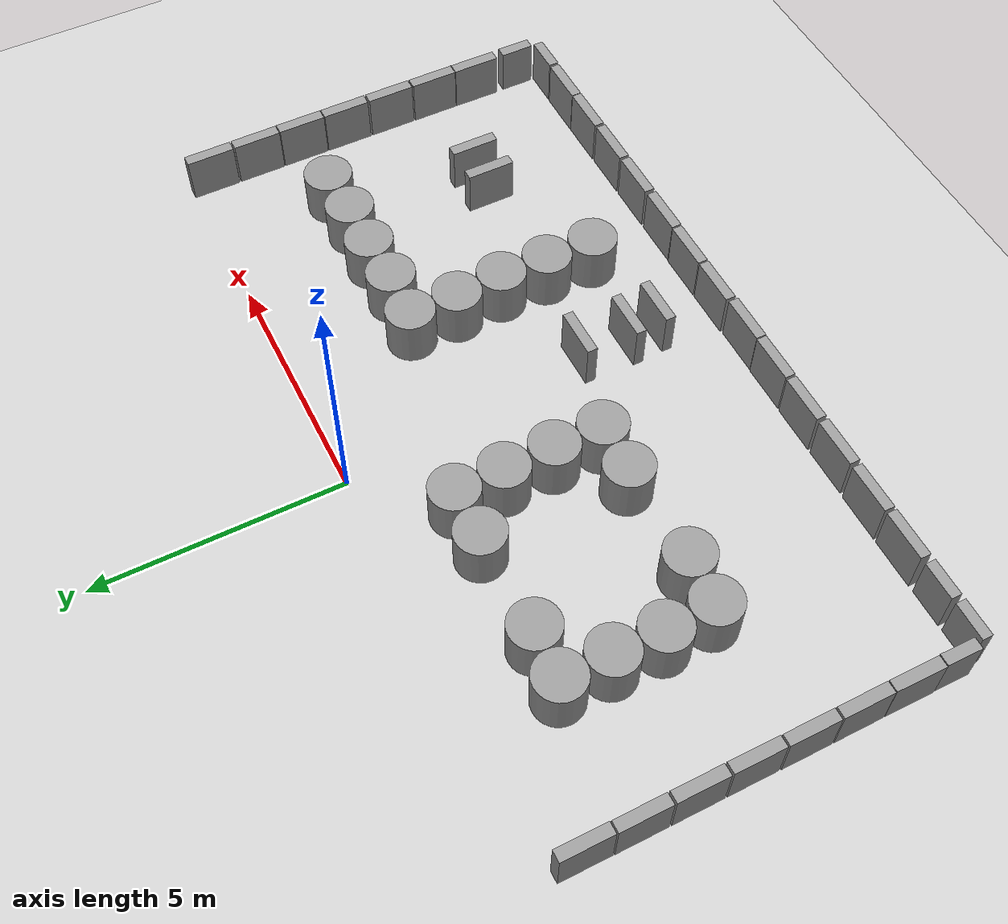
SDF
<sdf version="1.6">
 <world name="default">
  <model name="ground_plane">
   <static>1</static>
   <static>1</static>
   <link name="link">
    <collision name="collision">
     <geometry><plane><normal>0 0 1</normal><size>100 100</size></plane></geometry>
     <surface><friction><ode><mu>100</mu><mu2>50</mu2></ode></friction></surface>
    </collision>
    <visual name="visual">
     <cast_shadows>0</cast_shadows>
     <geometry><plane><normal>0 0 1</normal><size>100 100</size></plane></geometry>
     <material>
      <script><uri>file://media/materials/scripts/gazebo.material</uri><name>Gazebo/Grey</name></script>
     </material>
    </visual>
   </link>
  </model>
  <model name="unit_box_0_clone_7">
   <pose>8.11276 -0.44932 0.5 0 -0 0.000213</pose>
   <link name="link">
    <inertial>
     <mass>1</mass>
     <inertia>
      <ixx>0.166667</ixx>
      <ixy>0</ixy>
      <ixz>0</ixz>
      <iyy>0.166667</iyy>
      <iyz>0</iyz>
      <izz>0.166667</izz>
     </inertia>
    </inertial>
    <collision name="collision"><geometry><box><size>0.230819 1 1</size></box></geometry></collision>
    <visual name="visual">
     <geometry><box><size>0.230819 1 1</size></box></geometry>
     <material>
      <script><name>Gazebo/Grey</name><uri>file://media/materials/scripts/gazebo.material</uri></script>
     </material>
    </visual>
   </link>
  </model>
  <model name="unit_box_0_clone_8">
   <pose>8.11912 -1.48629 0.5 0 -0 0.000213</pose>
   <link name="link">
    <inertial>
     <mass>1</mass>
     <inertia>
      <ixx>0.166667</ixx>
      <ixy>0</ixy>
      <ixz>0</ixz>
      <iyy>0.166667</iyy>
      <iyz>0</iyz>
      <izz>0.166667</izz>
     </inertia>
    </inertial>
    <collision name="collision"><geometry><box><size>0.230819 1 1</size></box></geometry></collision>
    <visual name="visual">
     <geometry><box><size>0.230819 1 1</size></box></geometry>
     <material>
      <script><name>Gazebo/Grey</name><uri>file://media/materials/scripts/gazebo.material</uri></script>
     </material>
    </visual>
   </link>
  </model>
  <model name="unit_box_0_clone_9">
   <pose>8.12548 -2.5042 0.5 0 -0 0.000213</pose>
   <link name="link">
    <inertial>
     <mass>1</mass>
     <inertia>
      <ixx>0.166667</ixx>
      <ixy>0</ixy>
      <ixz>0</ixz>
      <iyy>0.166667</iyy>
      <iyz>0</iyz>
      <izz>0.166667</izz>
     </inertia>
    </inertial>
    <collision name="collision"><geometry><box><size>0.230819 1 1</size></box></geometry></collision>
    <visual name="visual">
     <geometry><box><size>0.230819 1 1</size></box></geometry>
     <material>
      <script><name>Gazebo/Grey</name><uri>file://media/materials/scripts/gazebo.material</uri></script>
     </material>
    </visual>
   </link>
  </model>
  <model name="unit_box_0_clone_10">
   <pose>8.12331 -3.52223 0.5 0 -0 0.000213</pose>
   <link name="link">
    <inertial>
     <mass>1</mass>
     <inertia>
      <ixx>0.166667</ixx>
      <ixy>0</ixy>
      <ixz>0</ixz>
      <iyy>0.166667</iyy>
      <iyz>0</iyz>
      <izz>0.166667</izz>
     </inertia>
    </inertial>
    <collision name="collision"><geometry><box><size>0.230819 1 1</size></box></geometry></collision>
    <visual name="visual">
     <geometry><box><size>0.230819 1 1</size></box></geometry>
     <material>
      <script><name>Gazebo/Grey</name><uri>file://media/materials/scripts/gazebo.material</uri></script>
     </material>
    </visual>
   </link>
  </model>
  <model name="unit_box_0_clone_11">
   <pose>8.1233 -4.56316 0.5 0 -0 0.000213</pose>
   <link name="link">
    <inertial>
     <mass>1</mass>
     <inertia>
      <ixx>0.166667</ixx>
      <ixy>0</ixy>
      <ixz>0</ixz>
      <iyy>0.166667</iyy>
      <iyz>0</iyz>
      <izz>0.166667</izz>
     </inertia>
    </inertial>
    <collision name="collision"><geometry><box><size>0.230819 1 1</size></box></geometry></collision>
    <visual name="visual">
     <geometry><box><size>0.230819 1 1</size></box></geometry>
     <material>
      <script><name>Gazebo/Grey</name><uri>file://media/materials/scripts/gazebo.material</uri></script>
     </material>
    </visual>
   </link>
  </model>
  <model name="unit_box_0_clone_12">
   <pose>8.11815 -5.59377 0.5 0 -0 0.000213</pose>
   <link name="link">
    <inertial>
     <mass>1</mass>
     <inertia>
      <ixx>0.166667</ixx>
      <ixy>0</ixy>
      <ixz>0</ixz>
      <iyy>0.166667</iyy>
      <iyz>0</iyz>
      <izz>0.166667</izz>
     </inertia>
    </inertial>
    <collision name="collision"><geometry><box><size>0.230819 1 1</size></box></geometry></collision>
    <visual name="visual">
     <geometry><box><size>0.230819 1 1</size></box></geometry>
     <material>
      <script><name>Gazebo/Grey</name><uri>file://media/materials/scripts/gazebo.material</uri></script>
     </material>
    </visual>
   </link>
  </model>
  <model name="unit_box_0_clone_13">
   <pose>8.11333 -6.60776 0.5 0 0 -0.005399</pose>
   <link name="link">
    <inertial>
     <mass>1</mass>
     <inertia>
      <ixx>0.166667</ixx>
      <ixy>0</ixy>
      <ixz>0</ixz>
      <iyy>0.166667</iyy>
      <iyz>0</iyz>
      <izz>0.166667</izz>
     </inertia>
    </inertial>
    <collision name="collision"><geometry><box><size>0.230819 1 1</size></box></geometry></collision>
    <visual name="visual">
     <geometry><box><size>0.230819 1 1</size></box></geometry>
     <material>
      <script><name>Gazebo/Grey</name><uri>file://media/materials/scripts/gazebo.material</uri></script>
     </material>
    </visual>
   </link>
  </model>
  <model name="unit_box_clone_15_clone_0">
   <pose>6.71207 -8.13116 0.5 0 -0 0.000178</pose>
   <link name="link">
    <inertial>
     <mass>1</mass>
     <inertia>
      <ixx>0.166667</ixx>
      <ixy>0</ixy>
      <ixz>0</ixz>
      <iyy>0.166667</iyy>
      <iyz>0</iyz>
      <izz>0.166667</izz>
     </inertia>
    </inertial>
    <collision name="collision"><geometry><box><size>1 0.210541 1</size></box></geometry></collision>
    <visual name="visual">
     <geometry><box><size>1 0.210541 1</size></box></geometry>
     <material>
      <script><name>Gazebo/Grey</name><uri>file://media/materials/scripts/gazebo.material</uri></script>
     </material>
    </visual>
   </link>
  </model>
  <model name="unit_box_clone_15_clone_1">
   <pose>5.69715 -8.13115 0.5 0 -0 0.000178</pose>
   <link name="link">
    <inertial>
     <mass>1</mass>
     <inertia>
      <ixx>0.166667</ixx>
      <ixy>0</ixy>
      <ixz>0</ixz>
      <iyy>0.166667</iyy>
      <iyz>0</iyz>
      <izz>0.166667</izz>
     </inertia>
    </inertial>
    <collision name="collision"><geometry><box><size>1 0.210541 1</size></box></geometry></collision>
    <visual name="visual">
     <geometry><box><size>1 0.210541 1</size></box></geometry>
     <material>
      <script><name>Gazebo/Grey</name><uri>file://media/materials/scripts/gazebo.material</uri></script>
     </material>
    </visual>
   </link>
  </model>
  <model name="unit_box_clone_15_clone_2">
   <pose>4.63881 -8.13733 0.5 0 -0 0.000178</pose>
   <link name="link">
    <inertial>
     <mass>1</mass>
     <inertia>
      <ixx>0.166667</ixx>
      <ixy>0</ixy>
      <ixz>0</ixz>
      <iyy>0.166667</iyy>
      <iyz>0</iyz>
      <izz>0.166667</izz>
     </inertia>
    </inertial>
    <collision name="collision"><geometry><box><size>1 0.210541 1</size></box></geometry></collision>
    <visual name="visual">
     <geometry><box><size>1 0.210541 1</size></box></geometry>
     <material>
      <script><name>Gazebo/Grey</name><uri>file://media/materials/scripts/gazebo.material</uri></script>
     </material>
    </visual>
   </link>
  </model>
  <model name="unit_box_clone_15_clone_3">
   <pose>3.57975 -8.13733 0.5 0 -0 0.000178</pose>
   <link name="link">
    <inertial>
     <mass>1</mass>
     <inertia>
      <ixx>0.166667</ixx>
      <ixy>0</ixy>
      <ixz>0</ixz>
      <iyy>0.166667</iyy>
      <iyz>0</iyz>
      <izz>0.166667</izz>
     </inertia>
    </inertial>
    <collision name="collision"><geometry><box><size>1 0.210541 1</size></box></geometry></collision>
    <visual name="visual">
     <geometry><box><size>1 0.210541 1</size></box></geometry>
     <material>
      <script><name>Gazebo/Grey</name><uri>file://media/materials/scripts/gazebo.material</uri></script>
     </material>
    </visual>
   </link>
  </model>
  <model name="unit_box_clone_15_clone_4">
   <pose>2.49815 -8.13732 0.5 0 -0 0.000178</pose>
   <link name="link">
    <inertial>
     <mass>1</mass>
     <inertia>
      <ixx>0.166667</ixx>
      <ixy>0</ixy>
      <ixz>0</ixz>
      <iyy>0.166667</iyy>
      <iyz>0</iyz>
      <izz>0.166667</izz>
     </inertia>
    </inertial>
    <collision name="collision"><geometry><box><size>1 0.210541 1</size></box></geometry></collision>
    <visual name="visual">
     <geometry><box><size>1 0.210541 1</size></box></geometry>
     <material>
      <script><name>Gazebo/Grey</name><uri>file://media/materials/scripts/gazebo.material</uri></script>
     </material>
    </visual>
   </link>
  </model>
  <model name="unit_box_clone_15_clone_5">
   <pose>1.46162 -8.12605 0.5 0 -0 0.000178</pose>
   <link name="link">
    <inertial>
     <mass>1</mass>
     <inertia>
      <ixx>0.166667</ixx>
      <ixy>0</ixy>
      <ixz>0</ixz>
      <iyy>0.166667</iyy>
      <iyz>0</iyz>
      <izz>0.166667</izz>
     </inertia>
    </inertial>
    <collision name="collision"><geometry><box><size>1 0.210541 1</size></box></geometry></collision>
    <visual name="visual">
     <geometry><box><size>1 0.210541 1</size></box></geometry>
     <material>
      <script><name>Gazebo/Grey</name><uri>file://media/materials/scripts/gazebo.material</uri></script>
     </material>
    </visual>
   </link>
  </model>
  <model name="unit_box_clone_15_clone_6">
   <pose>0.425089 -8.12604 0.5 0 -0 0.000178</pose>
   <link name="link">
    <inertial>
     <mass>1</mass>
     <inertia>
      <ixx>0.166667</ixx>
      <ixy>0</ixy>
      <ixz>0</ixz>
      <iyy>0.166667</iyy>
      <iyz>0</iyz>
      <izz>0.166667</izz>
     </inertia>
    </inertial>
    <collision name="collision"><geometry><box><size>1 0.210541 1</size></box></geometry></collision>
    <visual name="visual">
     <geometry><box><size>1 0.210541 1</size></box></geometry>
     <material>
      <script><name>Gazebo/Grey</name><uri>file://media/materials/scripts/gazebo.material</uri></script>
     </material>
    </visual>
   </link>
  </model>
  <model name="unit_box_clone_15_clone_7">
   <pose>-0.633973 -8.14859 0.5 0 -0 0.000178</pose>
   <link name="link">
    <inertial>
     <mass>1</mass>
     <inertia>
      <ixx>0.166667</ixx>
      <ixy>0</ixy>
      <ixz>0</ixz>
      <iyy>0.166667</iyy>
      <iyz>0</iyz>
      <izz>0.166667</izz>
     </inertia>
    </inertial>
    <collision name="collision"><geometry><box><size>1 0.210541 1</size></box></geometry></collision>
    <visual name="visual">
     <geometry><box><size>1 0.210541 1</size></box></geometry>
     <material>
      <script><name>Gazebo/Grey</name><uri>file://media/materials/scripts/gazebo.material</uri></script>
     </material>
    </visual>
   </link>
  </model>
  <model name="unit_box_clone_15_clone_8">
   <pose>-1.65923 -8.13731 0.5 0 -0 0.000178</pose>
   <link name="link">
    <inertial>
     <mass>1</mass>
     <inertia>
      <ixx>0.166667</ixx>
      <ixy>0</ixy>
      <ixz>0</ixz>
      <iyy>0.166667</iyy>
      <iyz>0</iyz>
      <izz>0.166667</izz>
     </inertia>
    </inertial>
    <collision name="collision"><geometry><box><size>1 0.210541 1</size></box></geometry></collision>
    <visual name="visual">
     <geometry><box><size>1 0.210541 1</size></box></geometry>
     <material>
      <script><name>Gazebo/Grey</name><uri>file://media/materials/scripts/gazebo.material</uri></script>
     </material>
    </visual>
   </link>
  </model>
  <model name="unit_box_clone_15_clone_9">
   <pose>-2.70703 -8.12606 0.5 0 -0 0.000178</pose>
   <link name="link">
    <inertial>
     <mass>1</mass>
     <inertia>
      <ixx>0.166667</ixx>
      <ixy>0</ixy>
      <ixz>0</ixz>
      <iyy>0.166667</iyy>
      <iyz>0</iyz>
      <izz>0.166667</izz>
     </inertia>
    </inertial>
    <collision name="collision"><geometry><box><size>1 0.210541 1</size></box></geometry></collision>
    <visual name="visual">
     <geometry><box><size>1 0.210541 1</size></box></geometry>
     <material>
      <script><name>Gazebo/Grey</name><uri>file://media/materials/scripts/gazebo.material</uri></script>
     </material>
    </visual>
   </link>
  </model>
  <model name="unit_box_clone_15_clone_10">
   <pose>-3.77736 -8.12605 0.5 0 -0 0.000178</pose>
   <link name="link">
    <inertial>
     <mass>1</mass>
     <inertia>
      <ixx>0.166667</ixx>
      <ixy>0</ixy>
      <ixz>0</ixz>
      <iyy>0.166667</iyy>
      <iyz>0</iyz>
      <izz>0.166667</izz>
     </inertia>
    </inertial>
    <collision name="collision"><geometry><box><size>1 0.210541 1</size></box></geometry></collision>
    <visual name="visual">
     <geometry><box><size>1 0.210541 1</size></box></geometry>
     <material>
      <script><name>Gazebo/Grey</name><uri>file://media/materials/scripts/gazebo.material</uri></script>
     </material>
    </visual>
   </link>
  </model>
  <model name="unit_box_clone_15_clone_11">
   <pose>-4.85896 -8.11479 0.5 0 -0 0.000178</pose>
   <link name="link">
    <inertial>
     <mass>1</mass>
     <inertia>
      <ixx>0.166667</ixx>
      <ixy>0</ixy>
      <ixz>0</ixz>
      <iyy>0.166667</iyy>
      <iyz>0</iyz>
      <izz>0.166667</izz>
     </inertia>
    </inertial>
    <collision name="collision"><geometry><box><size>1 0.210541 1</size></box></geometry></collision>
    <visual name="visual">
     <geometry><box><size>1 0.210541 1</size></box></geometry>
     <material>
      <script><name>Gazebo/Grey</name><uri>file://media/materials/scripts/gazebo.material</uri></script>
     </material>
    </visual>
   </link>
  </model>
  <model name="unit_box_clone_15_clone_12">
   <pose>-5.91802 -8.11478 0.5 0 -0 0.000178</pose>
   <link name="link">
    <inertial>
     <mass>1</mass>
     <inertia>
      <ixx>0.166667</ixx>
      <ixy>0</ixy>
      <ixz>0</ixz>
      <iyy>0.166667</iyy>
      <iyz>0</iyz>
      <izz>0.166667</izz>
     </inertia>
    </inertial>
    <collision name="collision"><geometry><box><size>1 0.210541 1</size></box></geometry></collision>
    <visual name="visual">
     <geometry><box><size>1 0.210541 1</size></box></geometry>
     <material>
      <script><name>Gazebo/Grey</name><uri>file://media/materials/scripts/gazebo.material</uri></script>
     </material>
    </visual>
   </link>
  </model>
  <model name="unit_box_0_clone_4_clone_7">
   <pose>-8.12609 -0.518034 0.5 0 -0 0.000213</pose>
   <link name="link">
    <inertial>
     <mass>1</mass>
     <inertia>
      <ixx>0.166667</ixx>
      <ixy>0</ixy>
      <ixz>0</ixz>
      <iyy>0.166667</iyy>
      <iyz>0</iyz>
      <izz>0.166667</izz>
     </inertia>
    </inertial>
    <collision name="collision"><geometry><box><size>0.230819 1 1</size></box></geometry></collision>
    <visual name="visual">
     <geometry><box><size>0.230819 1 1</size></box></geometry>
     <material>
      <script><name>Gazebo/Grey</name><uri>file://media/materials/scripts/gazebo.material</uri></script>
     </material>
    </visual>
   </link>
  </model>
  <model name="unit_box_0_clone_4_clone_8">
   <pose>-8.13284 -1.54445 0.5 0 -0 0.000213</pose>
   <link name="link">
    <inertial>
     <mass>1</mass>
     <inertia>
      <ixx>0.166667</ixx>
      <ixy>0</ixy>
      <ixz>0</ixz>
      <iyy>0.166667</iyy>
      <iyz>0</iyz>
      <izz>0.166667</izz>
     </inertia>
    </inertial>
    <collision name="collision"><geometry><box><size>0.230819 1 1</size></box></geometry></collision>
    <visual name="visual">
     <geometry><box><size>0.230819 1 1</size></box></geometry>
     <material>
      <script><name>Gazebo/Grey</name><uri>file://media/materials/scripts/gazebo.material</uri></script>
     </material>
    </visual>
   </link>
  </model>
  <model name="unit_box_0_clone_4_clone_9">
   <pose>-8.13285 -2.58439 0.5 0 -0 0.000213</pose>
   <link name="link">
    <inertial>
     <mass>1</mass>
     <inertia>
      <ixx>0.166667</ixx>
      <ixy>0</ixy>
      <ixz>0</ixz>
      <iyy>0.166667</iyy>
      <iyz>0</iyz>
      <izz>0.166667</izz>
     </inertia>
    </inertial>
    <collision name="collision"><geometry><box><size>0.230819 1 1</size></box></geometry></collision>
    <visual name="visual">
     <geometry><box><size>0.230819 1 1</size></box></geometry>
     <material>
      <script><name>Gazebo/Grey</name><uri>file://media/materials/scripts/gazebo.material</uri></script>
     </material>
    </visual>
   </link>
  </model>
  <model name="unit_box_0_clone_4_clone_10">
   <pose>-8.13285 -3.62431 0.5 0 -0 0.000213</pose>
   <link name="link">
    <inertial>
     <mass>1</mass>
     <inertia>
      <ixx>0.166667</ixx>
      <ixy>0</ixy>
      <ixz>0</ixz>
      <iyy>0.166667</iyy>
      <iyz>0</iyz>
      <izz>0.166667</izz>
     </inertia>
    </inertial>
    <collision name="collision"><geometry><box><size>0.230819 1 1</size></box></geometry></collision>
    <visual name="visual">
     <geometry><box><size>0.230819 1 1</size></box></geometry>
     <material>
      <script><name>Gazebo/Grey</name><uri>file://media/materials/scripts/gazebo.material</uri></script>
     </material>
    </visual>
   </link>
  </model>
  <model name="unit_box_0_clone_4_clone_11">
   <pose>-8.1396 -4.65747 0.5 0 -0 0.000213</pose>
   <link name="link">
    <inertial>
     <mass>1</mass>
     <inertia>
      <ixx>0.166667</ixx>
      <ixy>0</ixy>
      <ixz>0</ixz>
      <iyy>0.166667</iyy>
      <iyz>0</iyz>
      <izz>0.166667</izz>
     </inertia>
    </inertial>
    <collision name="collision"><geometry><box><size>0.230819 1 1</size></box></geometry></collision>
    <visual name="visual">
     <geometry><box><size>0.230819 1 1</size></box></geometry>
     <material>
      <script><name>Gazebo/Grey</name><uri>file://media/materials/scripts/gazebo.material</uri></script>
     </material>
    </visual>
   </link>
  </model>
  <model name="unit_box_0_clone_4_clone_12">
   <pose>-8.1396 -5.69064 0.5 0 -0 0.000213</pose>
   <link name="link">
    <inertial>
     <mass>1</mass>
     <inertia>
      <ixx>0.166667</ixx>
      <ixy>0</ixy>
      <ixz>0</ixz>
      <iyy>0.166667</iyy>
      <iyz>0</iyz>
      <izz>0.166667</izz>
     </inertia>
    </inertial>
    <collision name="collision"><geometry><box><size>0.230819 1 1</size></box></geometry></collision>
    <visual name="visual">
     <geometry><box><size>0.230819 1 1</size></box></geometry>
     <material>
      <script><name>Gazebo/Grey</name><uri>file://media/materials/scripts/gazebo.material</uri></script>
     </material>
    </visual>
   </link>
  </model>
  <model name="unit_box_0_clone_4_clone_13">
   <pose>-8.14113 -6.70874 0.5 -0 -0 -0.008612</pose>
   <link name="link">
    <inertial>
     <mass>1</mass>
     <inertia>
      <ixx>0.166667</ixx>
      <ixy>0</ixy>
      <ixz>0</ixz>
      <iyy>0.166667</iyy>
      <iyz>0</iyz>
      <izz>0.166667</izz>
     </inertia>
    </inertial>
    <collision name="collision"><geometry><box><size>0.230819 1 1</size></box></geometry></collision>
    <visual name="visual">
     <geometry><box><size>0.230819 1 1</size></box></geometry>
     <material>
      <script><name>Gazebo/Grey</name><uri>file://media/materials/scripts/gazebo.material</uri></script>
     </material>
    </visual>
   </link>
  </model>
  <model name="unit_box_clone_11_clone_1_clone_0">
   <pose>-6.9088 -8.11956 0.499997 -2e-06 7e-06 -0.002394</pose>
   <link name="link">
    <inertial>
     <mass>1</mass>
     <inertia>
      <ixx>0.166667</ixx>
      <ixy>0</ixy>
      <ixz>0</ixz>
      <iyy>0.166667</iyy>
      <iyz>0</iyz>
      <izz>0.166667</izz>
     </inertia>
    </inertial>
    <collision name="collision"><geometry><box><size>0.750223 0.210541 1</size></box></geometry></collision>
    <visual name="visual">
     <geometry><box><size>0.750223 0.210541 1</size></box></geometry>
     <material>
      <script><name>Gazebo/Grey</name><uri>file://media/materials/scripts/gazebo.material</uri></script>
     </material>
    </visual>
   </link>
  </model>
  <model name="unit_box_0_clone_4_clone_13_clone_clone">
   <pose>-8.13833 -7.57661 0.499997 7e-06 3e-06 -0.014396</pose>
   <link name="link">
    <inertial>
     <mass>1</mass>
     <inertia>
      <ixx>0.166667</ixx>
      <ixy>0</ixy>
      <ixz>0</ixz>
      <iyy>0.166667</iyy>
      <iyz>0</iyz>
      <izz>0.166667</izz>
     </inertia>
    </inertial>
    <collision name="collision"><geometry><box><size>0.230819 0.700336 1</size></box></geometry></collision>
    <visual name="visual">
     <geometry><box><size>0.230819 0.700336 1</size></box></geometry>
     <material>
      <script><name>Gazebo/Grey</name><uri>file://media/materials/scripts/gazebo.material</uri></script>
     </material>
    </visual>
   </link>
  </model>
  <model name="unit_box_clone_11_clone_1_clone_0_clone">
   <pose>-7.75474 -8.12201 0.499997 2e-06 8e-06 -0.008367</pose>
   <link name="link">
    <inertial>
     <mass>1</mass>
     <inertia>
      <ixx>0.166667</ixx>
      <ixy>0</ixy>
      <ixz>0</ixz>
      <iyy>0.166667</iyy>
      <iyz>0</iyz>
      <izz>0.166667</izz>
     </inertia>
    </inertial>
    <collision name="collision"><geometry><box><size>0.750223 0.210541 1</size></box></geometry></collision>
    <visual name="visual">
     <geometry><box><size>0.750223 0.210541 1</size></box></geometry>
     <material>
      <script><name>Gazebo/Grey</name><uri>file://media/materials/scripts/gazebo.material</uri></script>
     </material>
    </visual>
   </link>
  </model>
  <model name="unit_box_clone_11_clone_1_clone_2">
   <pose>7.64248 -8.13929 0.499997 2e-06 -7e-06 -0.000572</pose>
   <link name="link">
    <inertial>
     <mass>1</mass>
     <inertia>
      <ixx>0.166667</ixx>
      <ixy>0</ixy>
      <ixz>0</ixz>
      <iyy>0.166667</iyy>
      <iyz>0</iyz>
      <izz>0.166667</izz>
     </inertia>
    </inertial>
    <collision name="collision"><geometry><box><size>0.750223 0.210541 1</size></box></geometry></collision>
    <visual name="visual">
     <geometry><box><size>0.750223 0.210541 1</size></box></geometry>
     <material>
      <script><name>Gazebo/Grey</name><uri>file://media/materials/scripts/gazebo.material</uri></script>
     </material>
    </visual>
   </link>
  </model>
  <model name="unit_box_0_clone_4_clone_13_clone_clone_clone">
   <pose>8.11859 -7.62156 0.499997 7e-06 -2e-06 -0.004126</pose>
   <link name="link">
    <inertial>
     <mass>1</mass>
     <inertia>
      <ixx>0.166667</ixx>
      <ixy>0</ixy>
      <ixz>0</ixz>
      <iyy>0.166667</iyy>
      <iyz>0</iyz>
      <izz>0.166667</izz>
     </inertia>
    </inertial>
    <collision name="collision"><geometry><box><size>0.230819 0.700336 1</size></box></geometry></collision>
    <visual name="visual">
     <geometry><box><size>0.230819 0.700336 1</size></box></geometry>
     <material>
      <script><name>Gazebo/Grey</name><uri>file://media/materials/scripts/gazebo.material</uri></script>
     </material>
    </visual>
   </link>
  </model>
  <model name="unit_cylinder_clone_0_clone_clone_10">
   <pose>-1.52214 -1.49115 0.499994 -1e-06 -0 0.000478</pose>
   <link name="link">
    <inertial>
     <mass>1</mass>
     <inertia><ixx>0.145833</ixx><ixy>0</ixy><ixz>0</ixz><iyy>0.145833</iyy><iyz>0</iyz><izz>0.125</izz></inertia>
    </inertial>
    <collision name="collision">
     <geometry><cylinder><radius>0.5</radius><length>1</length></cylinder></geometry>
    </collision>
    <visual name="visual">
     <geometry><cylinder><radius>0.5</radius><length>1</length></cylinder></geometry>
     <material>
      <script><name>Gazebo/Grey</name><uri>file://media/materials/scripts/gazebo.material</uri></script>
     </material>
    </visual>
   </link>
  </model>
  <model name="unit_cylinder_clone_0_clone_clone_11">
   <pose>-2.52198 -1.51033 0.499996 3e-06 1e-06 0.00022</pose>
   <link name="link">
    <inertial>
     <mass>1</mass>
     <inertia><ixx>0.145833</ixx><ixy>0</ixy><ixz>0</ixz><iyy>0.145833</iyy><iyz>0</iyz><izz>0.125</izz></inertia>
    </inertial>
    <collision name="collision">
     <geometry><cylinder><radius>0.5</radius><length>1</length></cylinder></geometry>
    </collision>
    <visual name="visual">
     <geometry><cylinder><radius>0.5</radius><length>1</length></cylinder></geometry>
     <material>
      <script><name>Gazebo/Grey</name><uri>file://media/materials/scripts/gazebo.material</uri></script>
     </material>
    </visual>
   </link>
  </model>
  <model name="unit_cylinder_clone_0_clone_clone_12">
   <pose>-4.53006 -1.52762 0.499998 1e-06 1e-06 -0.000988</pose>
   <link name="link">
    <inertial>
     <mass>1</mass>
     <inertia><ixx>0.145833</ixx><ixy>0</ixy><ixz>0</ixz><iyy>0.145833</iyy><iyz>0</iyz><izz>0.125</izz></inertia>
    </inertial>
    <collision name="collision">
     <geometry><cylinder><radius>0.5</radius><length>1</length></cylinder></geometry>
    </collision>
    <visual name="visual">
     <geometry><cylinder><radius>0.5</radius><length>1</length></cylinder></geometry>
     <material>
      <script><name>Gazebo/Grey</name><uri>file://media/materials/scripts/gazebo.material</uri></script>
     </material>
    </visual>
   </link>
  </model>
  <model name="unit_cylinder_clone_0_clone_clone_13">
   <pose>-5.52941 -1.47557 0.499991 0 -0 -0.000236</pose>
   <link name="link">
    <inertial>
     <mass>1</mass>
     <inertia><ixx>0.145833</ixx><ixy>0</ixy><ixz>0</ixz><iyy>0.145833</iyy><iyz>0</iyz><izz>0.125</izz></inertia>
    </inertial>
    <collision name="collision">
     <geometry><cylinder><radius>0.5</radius><length>1</length></cylinder></geometry>
    </collision>
    <visual name="visual">
     <geometry><cylinder><radius>0.5</radius><length>1</length></cylinder></geometry>
     <material>
      <script><name>Gazebo/Grey</name><uri>file://media/materials/scripts/gazebo.material</uri></script>
     </material>
    </visual>
   </link>
  </model>
  <model name="unit_cylinder_clone_0_clone_clone_14">
   <pose>-5.5297 -2.47581 0.499991 0 -0 -0.000142</pose>
   <link name="link">
    <inertial>
     <mass>1</mass>
     <inertia><ixx>0.145833</ixx><ixy>0</ixy><ixz>0</ixz><iyy>0.145833</iyy><iyz>0</iyz><izz>0.125</izz></inertia>
    </inertial>
    <collision name="collision">
     <geometry><cylinder><radius>0.5</radius><length>1</length></cylinder></geometry>
    </collision>
    <visual name="visual">
     <geometry><cylinder><radius>0.5</radius><length>1</length></cylinder></geometry>
     <material>
      <script><name>Gazebo/Grey</name><uri>file://media/materials/scripts/gazebo.material</uri></script>
     </material>
    </visual>
   </link>
  </model>
  <model name="unit_cylinder_clone_0_clone_clone_15">
   <pose>-5.5485 -3.47564 0.5 0 -0 -0.000202</pose>
   <link name="link">
    <inertial>
     <mass>1</mass>
     <inertia><ixx>0.145833</ixx><ixy>0</ixy><ixz>0</ixz><iyy>0.145833</iyy><iyz>0</iyz><izz>0.125</izz></inertia>
    </inertial>
    <collision name="collision">
     <geometry><cylinder><radius>0.5</radius><length>1</length></cylinder></geometry>
    </collision>
    <visual name="visual">
     <geometry><cylinder><radius>0.5</radius><length>1</length></cylinder></geometry>
     <material>
      <script><name>Gazebo/Grey</name><uri>file://media/materials/scripts/gazebo.material</uri></script>
     </material>
    </visual>
   </link>
  </model>
  <model name="unit_cylinder_clone_0_clone_clone_16">
   <pose>-5.51723 -4.48236 0.499997 3e-06 1e-06 -0.000117</pose>
   <link name="link">
    <inertial>
     <mass>1</mass>
     <inertia><ixx>0.145833</ixx><ixy>0</ixy><ixz>0</ixz><iyy>0.145833</iyy><iyz>0</iyz><izz>0.125</izz></inertia>
    </inertial>
    <collision name="collision">
     <geometry><cylinder><radius>0.5</radius><length>1</length></cylinder></geometry>
    </collision>
    <visual name="visual">
     <geometry><cylinder><radius>0.5</radius><length>1</length></cylinder></geometry>
     <material>
      <script><name>Gazebo/Grey</name><uri>file://media/materials/scripts/gazebo.material</uri></script>
     </material>
    </visual>
   </link>
  </model>
  <model name="unit_cylinder_clone_0_clone_clone_17">
   <pose>-4.51968 -4.55258 0.5 0 -0 0.001021</pose>
   <link name="link">
    <inertial>
     <mass>1</mass>
     <inertia><ixx>0.145833</ixx><ixy>0</ixy><ixz>0</ixz><iyy>0.145833</iyy><iyz>0</iyz><izz>0.125</izz></inertia>
    </inertial>
    <collision name="collision">
     <geometry><cylinder><radius>0.5</radius><length>1</length></cylinder></geometry>
    </collision>
    <visual name="visual">
     <geometry><cylinder><radius>0.5</radius><length>1</length></cylinder></geometry>
     <material>
      <script><name>Gazebo/Grey</name><uri>file://media/materials/scripts/gazebo.material</uri></script>
     </material>
    </visual>
   </link>
  </model>
  <model name="unit_cylinder_clone_0_clone_clone_18">
   <pose>-2.49811 -4.50103 0.499993 -3e-06 -1e-06 5.2e-05</pose>
   <link name="link">
    <inertial>
     <mass>1</mass>
     <inertia><ixx>0.145833</ixx><ixy>0</ixy><ixz>0</ixz><iyy>0.145833</iyy><iyz>0</iyz><izz>0.125</izz></inertia>
    </inertial>
    <collision name="collision">
     <geometry><cylinder><radius>0.5</radius><length>1</length></cylinder></geometry>
    </collision>
    <visual name="visual">
     <geometry><cylinder><radius>0.5</radius><length>1</length></cylinder></geometry>
     <material>
      <script><name>Gazebo/Grey</name><uri>file://media/materials/scripts/gazebo.material</uri></script>
     </material>
    </visual>
   </link>
  </model>
  <model name="unit_cylinder_clone_0_clone_clone_19">
   <pose>-1.49826 -4.51946 0.499991 -0 -0 -0.000291</pose>
   <link name="link">
    <inertial>
     <mass>1</mass>
     <inertia><ixx>0.145833</ixx><ixy>0</ixy><ixz>0</ixz><iyy>0.145833</iyy><iyz>0</iyz><izz>0.125</izz></inertia>
    </inertial>
    <collision name="collision">
     <geometry><cylinder><radius>0.5</radius><length>1</length></cylinder></geometry>
    </collision>
    <visual name="visual">
     <geometry><cylinder><radius>0.5</radius><length>1</length></cylinder></geometry>
     <material>
      <script><name>Gazebo/Grey</name><uri>file://media/materials/scripts/gazebo.material</uri></script>
     </material>
    </visual>
   </link>
  </model>
  <model name="unit_cylinder_clone_0_clone_clone_20">
   <pose>-1.49057 -3.51931 0.499994 -3e-06 -1e-06 0.000551</pose>
   <link name="link">
    <inertial>
     <mass>1</mass>
     <inertia><ixx>0.145833</ixx><ixy>0</ixy><ixz>0</ixz><iyy>0.145833</iyy><iyz>0</iyz><izz>0.125</izz></inertia>
    </inertial>
    <collision name="collision">
     <geometry><cylinder><radius>0.5</radius><length>1</length></cylinder></geometry>
    </collision>
    <visual name="visual">
     <geometry><cylinder><radius>0.5</radius><length>1</length></cylinder></geometry>
     <material>
      <script><name>Gazebo/Grey</name><uri>file://media/materials/scripts/gazebo.material</uri></script>
     </material>
    </visual>
   </link>
  </model>
  <model name="unit_cylinder_clone_0_clone_clone_21">
   <pose>-1.50817 -2.49106 0.5 0 -0 -2e-05</pose>
   <link name="link">
    <inertial>
     <mass>1</mass>
     <inertia><ixx>0.145833</ixx><ixy>0</ixy><ixz>0</ixz><iyy>0.145833</iyy><iyz>0</iyz><izz>0.125</izz></inertia>
    </inertial>
    <collision name="collision">
     <geometry><cylinder><radius>0.5</radius><length>1</length></cylinder></geometry>
    </collision>
    <visual name="visual">
     <geometry><cylinder><radius>0.5</radius><length>1</length></cylinder></geometry>
     <material>
      <script><name>Gazebo/Grey</name><uri>file://media/materials/scripts/gazebo.material</uri></script>
     </material>
    </visual>
   </link>
  </model>
  <model name="unit_cylinder_clone_0_clone_clone_31">
   <pose>2.4736 -2.46954 0.499997 3e-06 2e-06 -0.002503</pose>
   <link name="link">
    <inertial>
     <mass>1</mass>
     <inertia><ixx>0.145833</ixx><ixy>0</ixy><ixz>0</ixz><iyy>0.145833</iyy><iyz>0</iyz><izz>0.125</izz></inertia>
    </inertial>
    <collision name="collision">
     <geometry><cylinder><radius>0.5</radius><length>1</length></cylinder></geometry>
    </collision>
    <visual name="visual">
     <geometry><cylinder><radius>0.5</radius><length>1</length></cylinder></geometry>
     <material>
      <script><name>Gazebo/Grey</name><uri>file://media/materials/scripts/gazebo.material</uri></script>
     </material>
    </visual>
   </link>
  </model>
  <model name="unit_cylinder_clone_0_clone_clone_32">
   <pose>2.47304 -3.46955 0.499993 -3e-06 2e-06 -0.002427</pose>
   <link name="link">
    <inertial>
     <mass>1</mass>
     <inertia><ixx>0.145833</ixx><ixy>0</ixy><ixz>0</ixz><iyy>0.145833</iyy><iyz>0</iyz><izz>0.125</izz></inertia>
    </inertial>
    <collision name="collision">
     <geometry><cylinder><radius>0.5</radius><length>1</length></cylinder></geometry>
    </collision>
    <visual name="visual">
     <geometry><cylinder><radius>0.5</radius><length>1</length></cylinder></geometry>
     <material>
      <script><name>Gazebo/Grey</name><uri>file://media/materials/scripts/gazebo.material</uri></script>
     </material>
    </visual>
   </link>
  </model>
  <model name="unit_cylinder_clone_0_clone_clone_33">
   <pose>2.53402 -4.4677 0.499995 -4e-06 2e-06 -0.001463</pose>
   <link name="link">
    <inertial>
     <mass>1</mass>
     <inertia><ixx>0.145833</ixx><ixy>0</ixy><ixz>0</ixz><iyy>0.145833</iyy><iyz>0</iyz><izz>0.125</izz></inertia>
    </inertial>
    <collision name="collision">
     <geometry><cylinder><radius>0.5</radius><length>1</length></cylinder></geometry>
    </collision>
    <visual name="visual">
     <geometry><cylinder><radius>0.5</radius><length>1</length></cylinder></geometry>
     <material>
      <script><name>Gazebo/Grey</name><uri>file://media/materials/scripts/gazebo.material</uri></script>
     </material>
    </visual>
   </link>
  </model>
  <model name="unit_cylinder_clone_0_clone_clone_34">
   <pose>2.51863 -5.47218 0.499993 -3e-06 2e-06 -0.002488</pose>
   <link name="link">
    <inertial>
     <mass>1</mass>
     <inertia><ixx>0.145833</ixx><ixy>0</ixy><ixz>0</ixz><iyy>0.145833</iyy><iyz>0</iyz><izz>0.125</izz></inertia>
    </inertial>
    <collision name="collision">
     <geometry><cylinder><radius>0.5</radius><length>1</length></cylinder></geometry>
    </collision>
    <visual name="visual">
     <geometry><cylinder><radius>0.5</radius><length>1</length></cylinder></geometry>
     <material>
      <script><name>Gazebo/Grey</name><uri>file://media/materials/scripts/gazebo.material</uri></script>
     </material>
    </visual>
   </link>
  </model>
  <model name="unit_cylinder_clone_0_clone_clone_35">
   <pose>2.50361 -6.49292 0.499993 -3e-06 2e-06 -0.002488</pose>
   <link name="link">
    <inertial>
     <mass>1</mass>
     <inertia><ixx>0.145833</ixx><ixy>0</ixy><ixz>0</ixz><iyy>0.145833</iyy><iyz>0</iyz><izz>0.125</izz></inertia>
    </inertial>
    <collision name="collision">
     <geometry><cylinder><radius>0.5</radius><length>1</length></cylinder></geometry>
    </collision>
    <visual name="visual">
     <geometry><cylinder><radius>0.5</radius><length>1</length></cylinder></geometry>
     <material>
      <script><name>Gazebo/Grey</name><uri>file://media/materials/scripts/gazebo.material</uri></script>
     </material>
    </visual>
   </link>
  </model>
  <model name="unit_cylinder_clone_0_clone_clone_37">
   <pose>4.491 -2.48473 0.499994 -4e-06 -3e-06 -0.002474</pose>
   <link name="link">
    <inertial>
     <mass>1</mass>
     <inertia><ixx>0.145833</ixx><ixy>0</ixy><ixz>0</ixz><iyy>0.145833</iyy><iyz>0</iyz><izz>0.125</izz></inertia>
    </inertial>
    <collision name="collision">
     <geometry><cylinder><radius>0.5</radius><length>1</length></cylinder></geometry>
    </collision>
    <visual name="visual">
     <geometry><cylinder><radius>0.5</radius><length>1</length></cylinder></geometry>
     <material>
      <script><name>Gazebo/Grey</name><uri>file://media/materials/scripts/gazebo.material</uri></script>
     </material>
    </visual>
   </link>
  </model>
  <model name="unit_cylinder_clone_0_clone_clone_36">
   <pose>3.49144 -2.51511 0.499996 0 4e-06 -0.002525</pose>
   <link name="link">
    <inertial>
     <mass>1</mass>
     <inertia><ixx>0.145833</ixx><ixy>0</ixy><ixz>0</ixz><iyy>0.145833</iyy><iyz>0</iyz><izz>0.125</izz></inertia>
    </inertial>
    <collision name="collision">
     <geometry><cylinder><radius>0.5</radius><length>1</length></cylinder></geometry>
    </collision>
    <visual name="visual">
     <geometry><cylinder><radius>0.5</radius><length>1</length></cylinder></geometry>
     <material>
      <script><name>Gazebo/Grey</name><uri>file://media/materials/scripts/gazebo.material</uri></script>
     </material>
    </visual>
   </link>
  </model>
  <model name="unit_cylinder_clone_0_clone_clone_38">
   <pose>5.49088 -2.50115 0.499993 3e-06 3e-06 -0.002282</pose>
   <link name="link">
    <inertial>
     <mass>1</mass>
     <inertia><ixx>0.145833</ixx><ixy>0</ixy><ixz>0</ixz><iyy>0.145833</iyy><iyz>0</iyz><izz>0.125</izz></inertia>
    </inertial>
    <collision name="collision">
     <geometry><cylinder><radius>0.5</radius><length>1</length></cylinder></geometry>
    </collision>
    <visual name="visual">
     <geometry><cylinder><radius>0.5</radius><length>1</length></cylinder></geometry>
     <material>
      <script><name>Gazebo/Grey</name><uri>file://media/materials/scripts/gazebo.material</uri></script>
     </material>
    </visual>
   </link>
  </model>
  <model name="unit_cylinder_clone_0_clone_clone_39">
   <pose>6.4898 -2.45384 0.499991 1e-06 -1e-06 -0.002939</pose>
   <link name="link">
    <inertial>
     <mass>1</mass>
     <inertia><ixx>0.145833</ixx><ixy>0</ixy><ixz>0</ixz><iyy>0.145833</iyy><iyz>0</iyz><izz>0.125</izz></inertia>
    </inertial>
    <collision name="collision">
     <geometry><cylinder><radius>0.5</radius><length>1</length></cylinder></geometry>
    </collision>
    <visual name="visual">
     <geometry><cylinder><radius>0.5</radius><length>1</length></cylinder></geometry>
     <material>
      <script><name>Gazebo/Grey</name><uri>file://media/materials/scripts/gazebo.material</uri></script>
     </material>
    </visual>
   </link>
  </model>
  <model name="unit_box_clone_15_clone_6_clone">
   <pose>0.514818 -5.13133 0.5 0 -0 0.000178</pose>
   <link name="link">
    <inertial>
     <mass>1</mass>
     <inertia>
      <ixx>0.166667</ixx>
      <ixy>0</ixy>
      <ixz>0</ixz>
      <iyy>0.166667</iyy>
      <iyz>0</iyz>
      <izz>0.166667</izz>
     </inertia>
    </inertial>
    <collision name="collision"><geometry><box><size>1 0.210541 1</size></box></geometry></collision>
    <visual name="visual">
     <geometry><box><size>1 0.210541 1</size></box></geometry>
     <material>
      <script><name>Gazebo/Grey</name><uri>file://media/materials/scripts/gazebo.material</uri></script>
     </material>
    </visual>
   </link>
  </model>
  <model name="unit_box_clone_15_clone_6_clone_0">
   <pose>0.479917 -6.1782 0.5 0 -0 0.00031</pose>
   <link name="link">
    <inertial>
     <mass>1</mass>
     <inertia>
      <ixx>0.166667</ixx>
      <ixy>0</ixy>
      <ixz>0</ixz>
      <iyy>0.166667</iyy>
      <iyz>0</iyz>
      <izz>0.166667</izz>
     </inertia>
    </inertial>
    <collision name="collision"><geometry><box><size>1 0.210541 1</size></box></geometry></collision>
    <visual name="visual">
     <geometry><box><size>1 0.210541 1</size></box></geometry>
     <material>
      <script><name>Gazebo/Grey</name><uri>file://media/materials/scripts/gazebo.material</uri></script>
     </material>
    </visual>
   </link>
  </model>
  <model name="unit_box_clone_15_clone_6_clone_4">
   <pose>0.514809 -6.84122 0.5 0 -0 0.000233</pose>
   <link name="link">
    <inertial>
     <mass>1</mass>
     <inertia>
      <ixx>0.166667</ixx>
      <ixy>0</ixy>
      <ixz>0</ixz>
      <iyy>0.166667</iyy>
      <iyz>0</iyz>
      <izz>0.166667</izz>
     </inertia>
    </inertial>
    <collision name="collision"><geometry><box><size>1 0.210541 1</size></box></geometry></collision>
    <visual name="visual">
     <geometry><box><size>1 0.210541 1</size></box></geometry>
     <material>
      <script><name>Gazebo/Grey</name><uri>file://media/materials/scripts/gazebo.material</uri></script>
     </material>
    </visual>
   </link>
  </model>
  <model name="unit_box_0_clone_12_clone">
   <pose>5.15017 -5.49782 0.5 0 -0 0.000229</pose>
   <link name="link">
    <inertial>
     <mass>1</mass>
     <inertia>
      <ixx>0.166667</ixx>
      <ixy>0</ixy>
      <ixz>0</ixz>
      <iyy>0.166667</iyy>
      <iyz>0</iyz>
      <izz>0.166667</izz>
     </inertia>
    </inertial>
    <collision name="collision"><geometry><box><size>0.230819 1 1</size></box></geometry></collision>
    <visual name="visual">
     <geometry><box><size>0.230819 1 1</size></box></geometry>
     <material>
      <script><name>Gazebo/Grey</name><uri>file://media/materials/scripts/gazebo.material</uri></script>
     </material>
    </visual>
   </link>
  </model>
  <model name="unit_box_0_clone_12_clone_0">
   <pose>5.89506 -5.49783 0.5 0 -0 0.000261</pose>
   <link name="link">
    <inertial>
     <mass>1</mass>
     <inertia>
      <ixx>0.166667</ixx>
      <ixy>0</ixy>
      <ixz>0</ixz>
      <iyy>0.166667</iyy>
      <iyz>0</iyz>
      <izz>0.166667</izz>
     </inertia>
    </inertial>
    <collision name="collision"><geometry><box><size>0.230819 1 1</size></box></geometry></collision>
    <visual name="visual">
     <geometry><box><size>0.230819 1 1</size></box></geometry>
     <material>
      <script><name>Gazebo/Grey</name><uri>file://media/materials/scripts/gazebo.material</uri></script>
     </material>
    </visual>
   </link>
  </model>
 </world>
</sdf>
